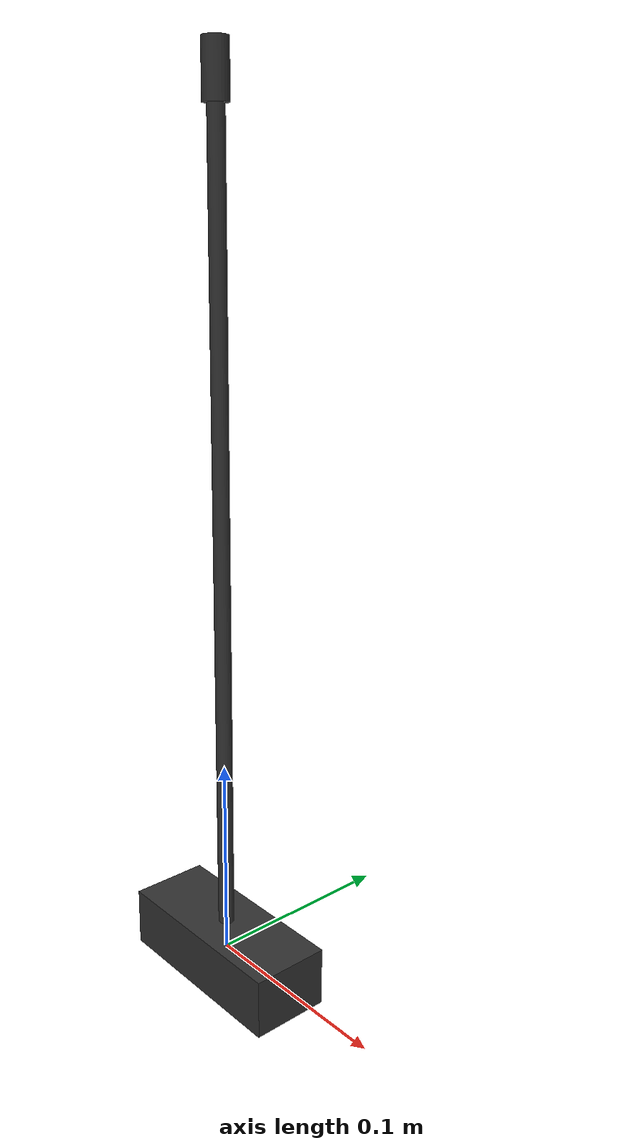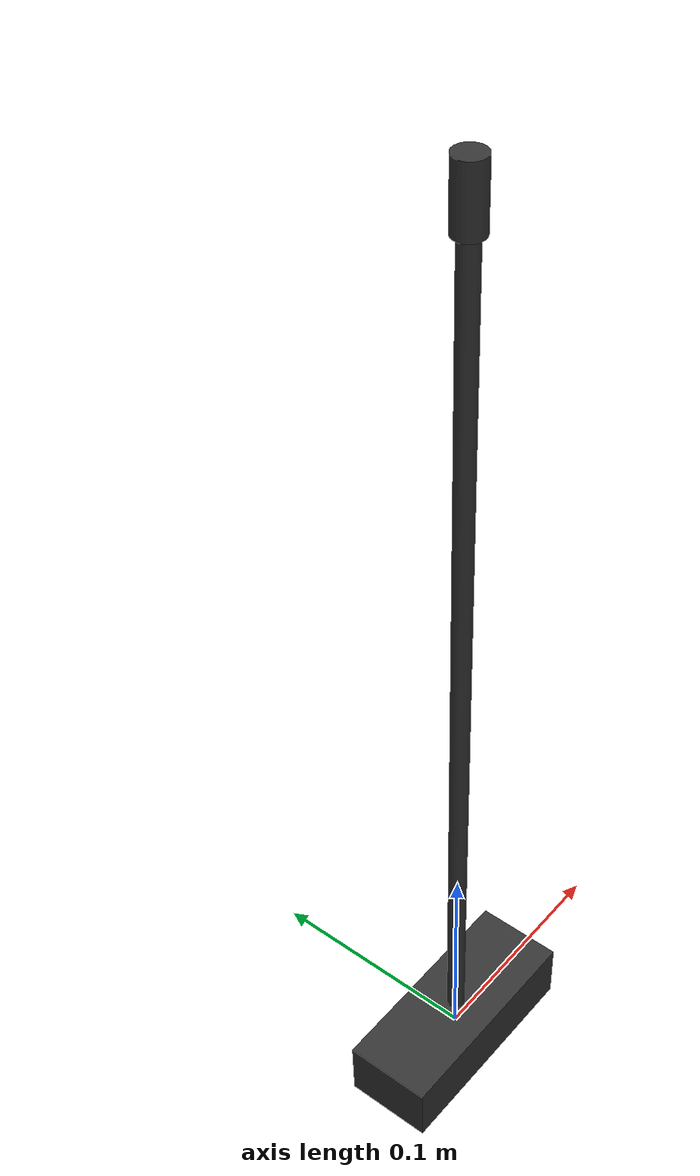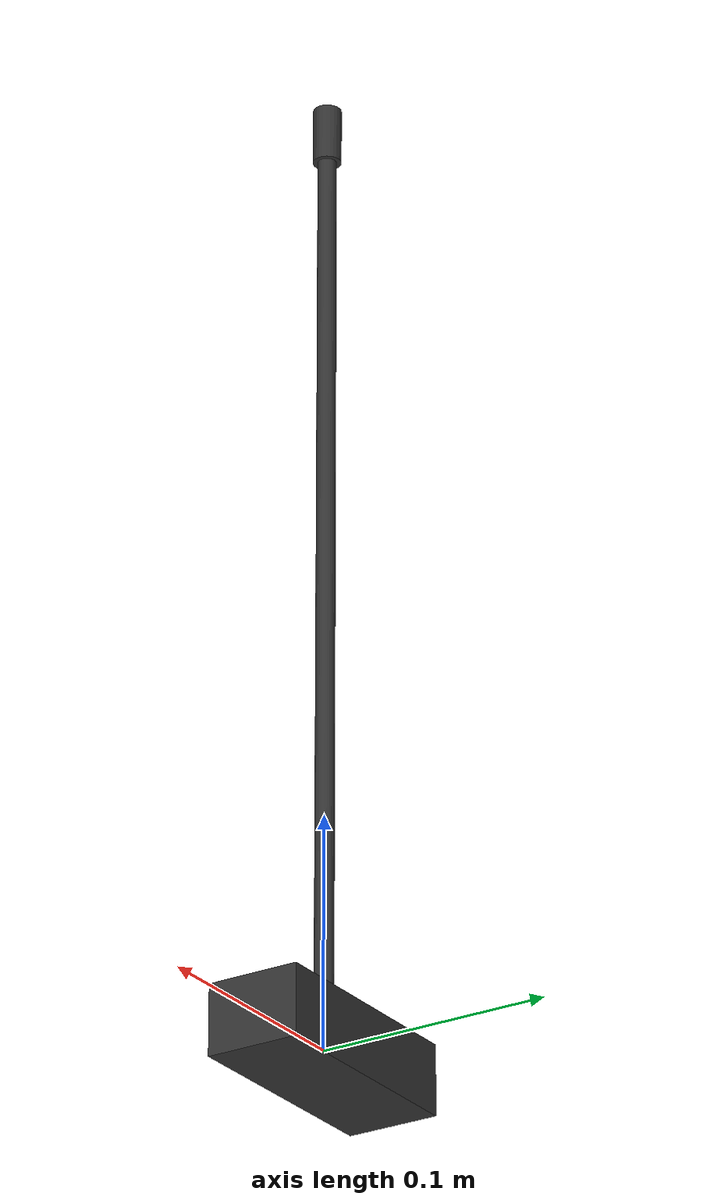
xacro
<?xml version="1.0"?>
<robot name="tee_robot" xmlns:xacro="http://www.ros.org/wiki/xacro">

  <!-- =====================  PROPERTIES  ===================== -->
  <xacro:property name="shaft_length" value="0.40"/>
  <xacro:property name="shaft_radius" value="0.004"/>
  <xacro:property name="tip_length"   value="0.025"/>
  <xacro:property name="tip_radius"   value="0.006"/>

  <xacro:property name="m_base"   value="0.50"/>
  <xacro:property name="m_shaft"  value="0.16"/>
  <xacro:property name="m_small"  value="0.02"/>
  <xacro:property name="m_tip"    value="0.03"/>

  <xacro:property name="pi" value="3.14159265359"/>

  <material name="dark_grey">
    <color rgba="0.2 0.2 0.2 1.0"/>
  </material>

  <!-- ========== GAZEBO ROS2_CONTROL PLUGIN (WORLD-LEVEL) ========== -->
  <!-- Assumes you have a config file at: tee_robot_description/config/ros2_control.yaml -->
<!--         $(find-pkg-share tee_robot_description)/config/ros2_control.yaml -->

  <!-- =====================  LINKS  ===================== -->

  <!-- BASE / HANDLE -->
  <link name="base_link">
    <inertial>
      <origin xyz="0 0 0" rpy="0 0 0"/>
      <mass value="${m_base}"/>
      <inertia ixx="0.01" ixy="0.0" ixz="0.0"
               iyy="0.01" iyz="0.0"
               izz="0.01"/>
    </inertial>
    <visual>
      <origin xyz="0 0 0" rpy="0 0 0"/>
      <geometry>
        <box size="0.10 0.04 0.03"/>
      </geometry>
      <material name="dark_grey"/>
    </visual>
    <collision>
      <origin xyz="0 0 0" rpy="0 0 0"/>
      <geometry>
        <box size="0.10 0.04 0.03"/>
      </geometry>
    </collision>
  </link>

  <!-- Shaft roll frame -->
  <link name="roll_link">
    <inertial>
      <origin xyz="0 0 0" rpy="0 0 0"/>
      <mass value="${m_small}"/>
      <inertia ixx="1e-4" ixy="0.0" ixz="0.0"
               iyy="1e-4" iyz="0.0"
               izz="1e-4"/>
    </inertial>
  </link>

  <!-- INSERTION TUBE -->
  <link name="shaft_link">
    <inertial>
      <origin xyz="0 0 ${shaft_length/2.0}" rpy="0 0 0"/>
      <mass value="${m_shaft}"/>
      <inertia ixx="0.0021" ixy="0.0" ixz="0.0"
               iyy="0.0021" iyz="0.0"
               izz="1.3e-6"/>
    </inertial>
    <visual>
      <origin xyz="0 0 ${shaft_length/2.0}" rpy="0 0 0"/>
      <geometry>
        <cylinder radius="${shaft_radius}" length="${shaft_length}"/>
      </geometry>
      <material name="dark_grey"/>
    </visual>
    <collision>
      <origin xyz="0 0 ${shaft_length/2.0}" rpy="0 0 0"/>
      <geometry>
        <cylinder radius="${shaft_radius}" length="${shaft_length}"/>
      </geometry>
    </collision>
  </link>

  <!-- distal bending frames -->
  <link name="yaw_link">
    <inertial>
      <origin xyz="0 0 0" rpy="0 0 0"/>
      <mass value="${m_small}"/>
      <inertia ixx="1e-4" ixy="0.0" ixz="0.0"
               iyy="1e-4" iyz="0.0"
               izz="1e-4"/>
    </inertial>
  </link>

  <link name="tip_pitch_link">
    <inertial>
      <origin xyz="0 0 0" rpy="0 0 0"/>
      <mass value="${m_small}"/>
      <inertia ixx="1e-4" ixy="0.0" ixz="0.0"
               iyy="1e-4" iyz="0.0"
               izz="1e-4"/>
    </inertial>
  </link>

  <!-- TIP / TRANSDUCER -->
  <link name="tip_link">
    <inertial>
      <origin xyz="0 0 ${tip_length/2.0}" rpy="0 0 0"/>
      <mass value="${m_tip}"/>
      <inertia ixx="5e-4" ixy="0.0" ixz="0.0"
               iyy="5e-4" iyz="0.0"
               izz="5e-4"/>
    </inertial>
    <visual>
      <origin xyz="0 0 ${tip_length/2.0}" rpy="0 0 0"/>
      <geometry>
        <cylinder radius="${tip_radius}" length="${tip_length}"/>
      </geometry>
      <material name="dark_grey"/>
    </visual>
    <collision>
      <origin xyz="0 0 ${tip_length/2.0}" rpy="0 0 0"/>
      <geometry>
        <cylinder radius="${tip_radius}" length="${tip_length}"/>
      </geometry>
    </collision>
  </link>

  <!-- ========== CONTACT / FRICTION PROPERTIES FOR LINKS ========== -->

  <!-- Low friction shaft sliding in oesophagus -->
  <gazebo reference="shaft_link">
    <mu1>0.05</mu1>
    <mu2>0.05</mu2>
    <kp>5e5</kp>          <!-- contact stiffness -->
    <kd>5e2</kd>          <!-- contact damping -->
    <maxVel>0.2</maxVel>
    <minDepth>0.001</minDepth>
  </gazebo>

  <!-- Slightly stickier tip (it presses the wall) -->
  <gazebo reference="tip_link">
    <mu1>0.3</mu1>
    <mu2>0.3</mu2>
    <kp>8e5</kp>
    <kd>8e2</kd>
    <maxVel>0.2</maxVel>
    <minDepth>0.001</minDepth>

    <!-- Example sensor attached at the tip -->
    <sensor name="tip_imu" type="imu">
      <always_on>true</always_on>
      <update_rate>200.0</update_rate>
      <visualize>false</visualize>
      <pose>0 0 0 0 0 0</pose>
      <plugin name="tip_imu_plugin" filename="libgazebo_ros_imu_sensor.so">
        <ros>
          <namespace>/tee_probe</namespace>
          <remapping>~/imu:=tip_imu/data</remapping>
        </ros>
      </plugin>
    </sensor>
  </gazebo>

  <!-- =====================  JOINTS (with damping)  ===================== -->

  <!-- θ3 roll -->
  <joint name="joint_roll" type="continuous">
    <parent link="base_link"/>
    <child  link="roll_link"/>
    <origin xyz="0 0 0" rpy="0 0 0"/>
    <axis xyz="0 0 1"/>
    <limit effort="2.0" velocity="5.0"/>
    <dynamics damping="0.05" friction="0.0"/>
  </joint>

  <!-- d4 insertion -->
  <joint name="joint_insertion" type="prismatic">
    <parent link="roll_link"/>
    <child  link="shaft_link"/>
    <origin xyz="0 0 0" rpy="0 0 0"/>
    <axis xyz="0 0 1"/>
    <limit lower="0.0" upper="0.35" effort="10.0" velocity="0.2"/>
    <dynamics damping="5.0" friction="1.0"/>
  </joint>

  <!-- θ1 lateral bending -->
  <joint name="joint_yaw" type="revolute">
    <parent link="shaft_link"/>
    <child  link="yaw_link"/>
    <origin xyz="0 0 ${shaft_length}" rpy="0 0 0"/>
    <axis xyz="0 1 0"/>
    <limit lower="-1.0472" upper="1.0472" effort="2.0" velocity="1.0"/>
    <dynamics damping="0.1" friction="0.0"/>
  </joint>

  <!-- θ2 ante/retro flexion -->
  <joint name="joint_pitch" type="revolute">
    <parent link="yaw_link"/>
    <child  link="tip_pitch_link"/>
    <origin xyz="0 0 0" rpy="0 0 0"/>
    <axis xyz="1 0 0"/>
    <limit lower="-1.0472" upper="1.0472" effort="2.0" velocity="1.0"/>
    <dynamics damping="0.1" friction="0.0"/>
  </joint>

  <!-- fixed from bending frame to actual tip geometry -->
  <joint name="joint_tip_fixed" type="fixed">
    <parent link="tip_pitch_link"/>
    <child  link="tip_link"/>
    <origin xyz="0 0 0" rpy="0 0 0"/>
  </joint>

  <!-- =====================  TRANSMISSIONS FOR ros2_control  ===================== -->

  <transmission name="trans_roll">
    <type>transmission_interface/SimpleTransmission</type>
    <actuator name="motor_roll">
      <mechanicalReduction>1</mechanicalReduction>
    </actuator>
    <joint name="joint_roll"/>
  </transmission>

  <transmission name="trans_insertion">
    <type>transmission_interface/SimpleTransmission</type>
    <actuator name="motor_insertion">
      <mechanicalReduction>1</mechanicalReduction>
    </actuator>
    <joint name="joint_insertion"/>
  </transmission>

  <transmission name="trans_yaw">
    <type>transmission_interface/SimpleTransmission</type>
    <actuator name="motor_yaw">
      <mechanicalReduction>1</mechanicalReduction>
    </actuator>
    <joint name="joint_yaw"/>
  </transmission>

  <transmission name="trans_pitch">
    <type>transmission_interface/SimpleTransmission</type>
    <actuator name="motor_pitch">
      <mechanicalReduction>1</mechanicalReduction>
    </actuator>
    <joint name="joint_pitch"/>
  </transmission>

</robot>
